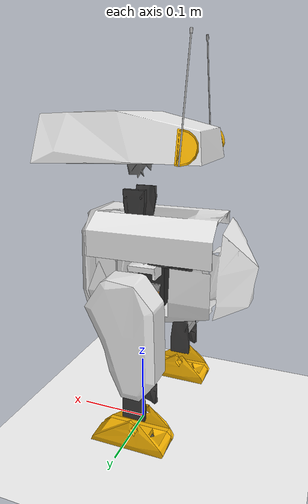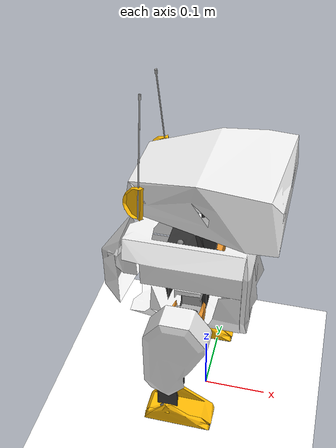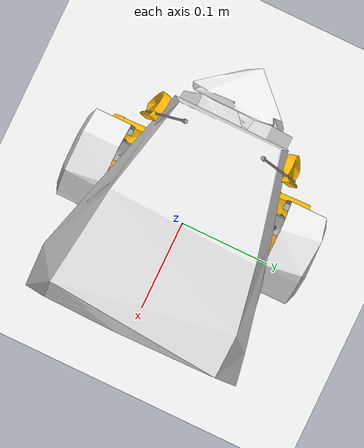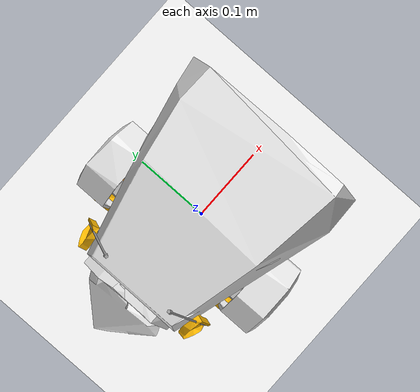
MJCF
<mujoco model="scene">
    <include file="waddle_12V_nobacklash.xml"/>

    <visual>
        <headlight diffuse="0.6 0.6 0.6" ambient="0.3 0.3 0.3" specular="0 0 0"/>
        <rgba haze="0.15 0.25 0.35 1"/>
        <global azimuth="160" elevation="-20"/>
    </visual>

    <asset>
        <texture type="skybox" builtin="gradient" rgb1="1 1 1" rgb2="1 1 1" width="800" height="800"/>
        <texture type="2d" name="groundplane" builtin="checker" mark="edge" rgb1="1 1 1" rgb2="1 1 1" markrgb="0 0 0"
            width="300" height="300"/>
        <material name="groundplane" texture="groundplane" texuniform="true" texrepeat="5 5" reflectance="0"/>
    </asset>

    <worldbody>
        <body name="floor">
            <geom name="floor" size="0 0 0.01" type="plane" material="groundplane" contype="1" conaffinity="0"
                priority="1" friction="0.6" condim="3"/>
        </body>
    </worldbody>
    <keyframe>
        <key name="home"
            qpos="
    0 0 0.15
    1 0 0 0
    0.0
    0.0
    -0.63
    1.37
    -0.79
    0.0
    0.0
    0.0
    0.0
    0.0
    0.0
    0.63
    1.37
    -0.79
"
            ctrl="
    0.0
    0.0
    -0.63
    1.37
    -0.79
    0.0
    0.0
    0.0
    0.0
    0.0
    0.0
    0.63
    1.37
    -0.79
          "/>
    </keyframe>
</mujoco>

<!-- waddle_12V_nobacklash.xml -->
<mujoco model="waddle">
  <!-- They had this option in openduck so added here -->
  <option iterations="1" ls_iterations="5">
    <flag eulerdamp="disable"/>
  </option>

  <compiler angle="radian" meshdir="../assets" autolimits="true"/>

  <default>
    <default class="waddle">
      <default class="visual">
        <geom type="mesh" contype="0" conaffinity="0" group="2"/>
      </default>
      <default class="collision">
        <geom group="3"/>
      </default>
    </default>
  </default>
  <!-- Additional xmls/sensors.xml -->
  <sensor>
    <gyro site="imu" name="gyro"/>
    <velocimeter site="imu" name="local_linvel"/>
    <accelerometer site="imu" name="accelerometer"/>
    <framezaxis objtype="site" objname="imu" name="upvector"/>
    <framexaxis objtype="site" objname="imu" name="forwardvector"/>
    <framelinvel objtype="site" objname="imu" name="global_linvel"/>
    <frameangvel objtype="site" objname="imu" name="global_angvel"/>
    <framepos objtype="site" objname="imu" name="position"/>
    <framequat objtype="site" objname="imu" name="orientation"/>
    <framelinvel objtype="site" objname="right_foot" name="right_foot_global_linvel"/>
    <framelinvel objtype="site" objname="left_foot" name="left_foot_global_linvel"/>
    <framexaxis objtype="site" objname="left_foot" name="left_foot_upvector"/>
    <framexaxis objtype="site" objname="right_foot" name="right_foot_upvector"/>
    <framepos objtype="site" objname="left_foot" name="left_foot_pos"/>
    <framepos objtype="site" objname="right_foot" name="right_foot_pos"/>
  </sensor>
  <!-- Additional xmls/joints_properties.xml -->
  <default>
    <default class="sts3215_12v">
      <geom contype="0" conaffinity="0"/>
      <joint damping="1.05" frictionloss="0.195" armature="0.032"/>
      <position kp="46.3" kv="0.0" forcerange="-8.53 8.53"/>
      <default class="chosen_actuator"/>
    </default>
  </default>
  <worldbody>
    <body name="base" pos="0 0 0.22">
      <freejoint name="floating_base"/>
      <!-- IMU position unchanged from waddle original -->
      <site name="imu" pos="-0.040705 -1.715e-09 0.0862909"/>

      <!-- Link trunk_assembly -->
      <body name="trunk_assembly" pos="0 0 0" quat="1 0 0 0" childclass="waddle">
        <!-- Mass/inertia unchanged from waddle original -->
        <inertial pos="-0.0215141 0.00119061 0.0354003" mass="1.1678" fullinertia="0.00252715 0.00565527 0.00482046 0.000146105 0.000181039 -2.75948e-05"/>
        <!-- Part jetson_nano_baseplate -->
        <!-- Internal visual part removed to match open duck convention -->
        <!-- Part body_front -->
        <geom type="mesh" class="visual" pos="0.001 0 0.0648909" quat="1 -0 -0 0" mesh="body_front" material="body_front_material"/>
        <!-- Part battery_enclosure -->
        <geom type="mesh" class="visual" pos="0.065 0.027 -0.0151091" quat="0.707107 -0 -0.707107 -0" mesh="battery_enclosure" material="battery_enclosure_material"/>
        <!-- Internal visual part removed to match open duck convention -->
        <!-- Part turnigy_3s_battery -->
        <!-- Internal visual part removed to match open duck convention -->
        <!-- Part body_middle_bottom -->
        <geom type="mesh" class="visual" pos="-0.019 -0 0.0648909" quat="1 -0 -0 0" mesh="body_middle_bottom" material="body_middle_bottom_material"/>
        <!-- Part simplified_jetson_nano -->
        <!-- Internal visual part removed to match open duck convention -->
        <!-- Part switch -->
        <!-- Internal visual part removed to match open duck convention -->
        <!-- Part body_middle_top -->
        <geom type="mesh" class="visual" pos="-0.019 0 0.0648909" quat="1 0 0 0" mesh="body_middle_top" material="body_middle_top_material"/>
        <!-- Part body_back -->
        <geom type="mesh" class="visual" pos="-0.019 0 0.0648909" quat="1 -0 -0 0" mesh="body_back" material="body_back_material"/>
        <!-- Part bno055 -->
        <!-- Internal visual part removed to match open duck convention -->
        <!-- Part roll_bearing -->
        <!-- Internal visual part removed to match open duck convention -->
        <!-- Part trunk_bottom -->
        <geom type="mesh" class="visual" pos="-0.019 0 0.0648909" quat="1 -0 0 0" mesh="trunk_bottom" material="trunk_bottom_material"/>
        <!-- Part trunk_top -->
        <geom type="mesh" class="visual" pos="-0.019 -0 0.0648909" quat="1 -0 -0 0" mesh="trunk_top" material="trunk_top_material"/>
        <!-- Part board -->
        <!-- Internal visual part removed to match open duck convention -->
        <!-- Part roll_bearing_2 -->
        <!-- Internal visual part removed to match open duck convention -->
        <!-- Part pdb_xt60 -->
        <!-- Internal visual part removed to match open duck convention -->
        <!-- Part wj_wk00_0123middlecase_56 -->
        <!-- Part drive_palonier -->
        <!-- Part wj_wk00_0124bottomcase_45 -->
        <!-- Part wj_wk00_0122topcabinetcase_95 -->
        <!-- Part passive_palonier -->
        <!-- Part wj_wk00_0123middlecase_56_2 -->
        <!-- Part drive_palonier_2 -->
        <!-- Part wj_wk00_0124bottomcase_45_2 -->
        <!-- Part wj_wk00_0122topcabinetcase_95_2 -->
        <!-- Part passive_palonier_2 -->
        <!-- Part wj_wk00_0123middlecase_56_3 -->
        <!-- Part drive_palonier_3 -->
        <!-- Part wj_wk00_0124bottomcase_45_3 -->
        <!-- Part wj_wk00_0122topcabinetcase_95_3 -->
        <!-- Part passive_palonier_3 -->
        <!-- Frame trunk -->
        <site group="3" name="trunk" pos="-0.024 -0 0.0881909" quat="1 -0 -0 0"/>
        <!-- Frame imu -->
        <!-- Link hip_roll_assembly -->
        <body name="hip_roll_assembly" pos="-0.019 0.035 0.0459409" quat="1 -0 -0 -0">
          <!-- Joint from trunk_assembly to hip_roll_assembly -->
          <!-- left_hip_yaw: range unchanged (same as open duck: ±30°) -->
          <joint axis="0 0 1" name="left_hip_yaw" type="hinge" range="-0.5235987755981718 0.5235987755984258" class="chosen_actuator"/>

          <inertial pos="0.000795081 -5.46541e-06 -0.03306" mass="0.06648" fullinertia="2.44411e-05 2.81818e-05 1.42687e-05 2.357e-09 -3.81059e-07 -7.5e-09"/>
          <!-- Part roll_motor_bottom -->
          <geom type="mesh" class="visual" pos="-0 -0.035 0.01905" quat="1 -0 0 -0" mesh="roll_motor_bottom" material="roll_motor_bottom_material"/>
          <!-- Part roll_motor_top -->
          <geom type="mesh" class="visual" pos="0 -0.035 0.01905" quat="1 0 0 0" mesh="roll_motor_top" material="roll_motor_top_material"/>
          <!-- Part wj_wk00_0123middlecase_56_4 -->
          <!-- Part drive_palonier_4 -->
          <!-- Part wj_wk00_0124bottomcase_45_4 -->
          <!-- Part wj_wk00_0122topcabinetcase_95_4 -->
          <!-- Part passive_palonier_4 -->

          <!-- Link left_roll_to_pitch_assembly -->
          <body name="left_roll_to_pitch_assembly" pos="0.01905 0 -0.046015" quat="0.5 -0.5 -0.5 0.5">
            <!-- Joint from hip_roll_assembly to left_roll_to_pitch_assembly -->
            <!-- left_hip_roll: range unchanged (same as open duck: ±25°) -->
            <joint axis="0 0 1" name="left_hip_roll" type="hinge" range="-0.43633231299857883 0.43633231299858594" class="chosen_actuator"/>

            <inertial pos="0.0507497 -0.000407512 0.0204377" mass="0.07516" fullinertia="2.52682e-05 4.15738e-05 2.82869e-05 1.22744e-07 -7.32857e-07 -1.05692e-07"/>
            <!-- Part left_roll_to_pitch -->
            <geom type="mesh" class="visual" pos="-0.035 -0.065 0.01905" quat="0.5 0.5 0.5 -0.5" mesh="left_roll_to_pitch" material="left_roll_to_pitch_material"/>
            <!-- Part wj_wk00_0123middlecase_56_5 -->
            <!-- Part drive_palonier_5 -->
            <!-- Part wj_wk00_0124bottomcase_45_5 -->
            <!-- Part wj_wk00_0122topcabinetcase_95_5 -->
            <!-- Part passive_palonier_5 -->

            <!-- Link knee_and_ankle_assembly -->
            <!-- CHANGED: quat from 0.270598 -0.653281 -0.270598 0.653281 to 0 -0.707107 0 0.707107 (match open duck pure 90° rotation) -->
            <body name="knee_and_ankle_assembly" pos="0.07415 -0 0.03511" quat="0 -0.707107 0 0.707107">
              <!-- Joint from left_roll_to_pitch_assembly to knee_and_ankle_assembly -->
              <!-- CHANGED: left_hip_pitch range from [-0.44, 1.31] to [-1.22, 0.52] to match open duck -->
              <joint axis="0 0 1" name="left_hip_pitch" type="hinge" range="-1.2217304763960306 0.5235987755982988" class="chosen_actuator"/>
              <inertial pos="0.00253369 -0.0390636 0.0102776" mass="0.12407" fullinertia="0.000211406 7.83759e-05 0.000225619 -2.68706e-05 3.81906e-06 2.08009e-05"/>
              <!-- Part left_cache -->
              <geom type="mesh" class="visual" pos="0.01606 0.065 0.10915" quat="0.707107 -0.707107 -0 0" mesh="left_cache" material="left_cache_material"/>
              <!-- Part leg_spacer -->
              <geom type="mesh" class="visual" pos="0.01606 0.14365 0.10925" quat="0.707107 -0.707107 -0 0" mesh="leg_spacer" material="leg_spacer_material"/>
              <!-- Part left_knee_to_ankle_right_sheet -->
              <geom type="mesh" class="visual" pos="0.01606 0.14365 0.10915" quat="0.707107 -0.707107 -0 0" mesh="left_knee_to_ankle_right_sheet" material="left_knee_to_ankle_right_sheet_material"/>
              <!-- Part left_knee_to_ankle_left_sheet -->
              <geom type="mesh" class="visual" pos="0.01606 0.14365 0.10915" quat="0.707107 -0.707107 0 -0" mesh="left_knee_to_ankle_left_sheet" material="left_knee_to_ankle_left_sheet_material"/>
              <!-- Part wj_wk00_0123middlecase_56_6 -->
              <!-- Part drive_palonier_6 -->
              <!-- Part wj_wk00_0124bottomcase_45_6 -->
              <!-- Part wj_wk00_0122topcabinetcase_95_6 -->
              <!-- Part passive_palonier_6 -->

              <!-- Link knee_and_ankle_assembly_2 -->
              <!-- CHANGED: quat from 0.707107 0 0 0.707107 to 1 0 0 0 (match open duck identity) -->
              <body name="knee_and_ankle_assembly_2" pos="-0 -0.07865 0.0001" quat="1 0 0 0">
                <!-- Joint from knee_and_ankle_assembly to knee_and_ankle_assembly_2 -->
                <!-- CHANGED: left_knee range from [-3.14, 0.0] to [-1.57, 1.57] to match open duck -->
                <joint axis="0 0 1" name="left_knee" type="hinge" range="-1.5707963267948966 1.5707963267948966" class="chosen_actuator"/>

                <inertial pos="5.01859e-06 -0.0577465 0.0181136" mass="0.07259" fullinertia="4.99575e-05 1.87273e-05 4.23932e-05 1.0382e-08 2.252e-09 8.8105e-08"/>
                <!-- Part leg_spacer_2 -->
                <geom type="mesh" class="visual" pos="0.01606 0.14365 0.10925" quat="0.707107 -0.707107 -0 0" mesh="leg_spacer" material="leg_spacer_material"/>
                <!-- Part left_knee_to_ankle_right_sheet_2 -->
                <geom type="mesh" class="visual" pos="0.01606 0.14365 0.10915" quat="0.707107 -0.707107 -0 0" mesh="left_knee_to_ankle_right_sheet" material="left_knee_to_ankle_right_sheet_material"/>
                <!-- Part left_knee_to_ankle_left_sheet_2 -->
                <geom type="mesh" class="visual" pos="0.01606 0.14365 0.10915" quat="0.707107 -0.707107 -0 0" mesh="left_knee_to_ankle_left_sheet" material="left_knee_to_ankle_left_sheet_material"/>
                <!-- Part wj_wk00_0123middlecase_56_7 -->
                <!-- Part drive_palonier_7 -->
                <!-- Part wj_wk00_0124bottomcase_45_7 -->
                <!-- Part wj_wk00_0122topcabinetcase_95_7 -->
                <!-- Part passive_palonier_7 -->

                <!-- Link foot_assembly -->
                <!-- CHANGED: quat from 0.92388 0 0 -0.382683 to 1 0 0 0 (match open duck identity) -->
                <body name="foot_assembly" pos="-0 -0.07865 0.0001" quat="1 0 0 0">
                  <!-- Joint from knee_and_ankle_assembly_2 to foot_assembly -->
                  <!-- CHANGED: left_ankle range from [-0.79, 2.36] to [-1.57, 1.57] to match open duck -->
                  <joint axis="0 0 1" name="left_ankle" type="hinge" range="-1.5707963267948966 1.5707963267948966" class="chosen_actuator"/>
                  <inertial pos="0.0110718 -0.0246608 0.0190626" mass="0.07524" fullinertia="1.87482e-05 6.74427e-05 6.061e-05 1.58839e-06 -6.524e-09 5.6739e-08"/>
                  <!-- Part foot_side -->
                  <geom type="mesh" class="visual" pos="0.01606 0.2223 0.10905" quat="0.707107 -0.707107 0 -0" mesh="foot_side" material="foot_side_material"/>
                  <!-- Part foot_bottom_tpu -->
                  <geom type="mesh" class="visual" pos="0.01656 0.2228 0.10955" quat="0.707107 -0.707107 0 -0" mesh="foot_bottom_tpu" material="foot_bottom_tpu_material"/>
                  <geom name="left_foot_bottom_tpu" type="mesh" class="collision" pos="0.01656 0.2228 0.10955" quat="0.707107 -0.707107 0 -0" mesh="foot_bottom_tpu" material="foot_bottom_tpu_material"/>
                  <!-- Part foot_bottom_pla -->
                  <geom type="mesh" class="visual" pos="0.01656 0.2228 0.10955" quat="0.707107 -0.707107 0 -0" mesh="foot_bottom_pla" material="foot_bottom_pla_material"/>
                  <!-- Part foot_top -->
                  <geom type="mesh" class="visual" pos="0.01606 0.2223 0.10905" quat="0.707107 -0.707107 0 -0" mesh="foot_top" material="foot_top_material"/>
                  <!-- Frame left_foot -->
                  <site group="3" name="left_foot" pos="0.0005 -0.036225 0.01955" quat="0.707107 -0.707107 -0 0"/>
                </body>
              </body>
            </body>
          </body>
        </body>

        <!-- Link neck_pitch_assembly -->
        <!-- CHANGED: quat from 0.653281 0.653281 -0.270598 0.270598 to 0.707107 0.707107 0 0 (match open duck pure rotation) -->
        <body name="neck_pitch_assembly" pos="0.001 0.01915 0.0900009" quat="0.707107 0.707107 0 0">
          <!-- Joint from trunk_assembly to neck_pitch_assembly -->
          <!-- CHANGED: neck_pitch range from [-1.13, 0.35] to [-0.35, 1.13] to match open duck -->
          <joint axis="0 0 1" name="neck_pitch" type="hinge" range="-0.3490658503988437 1.1344640137963364" class="chosen_actuator"/>

          <inertial pos="-5.63137e-06 0.0492968 0.0181786" mass="0.06618" fullinertia="3.49456e-05 1.70231e-05 2.80043e-05 8.756e-09 -2.156e-09 -1.8519e-08"/>
          <!-- Part neck_left_sheet -->
          <geom type="mesh" class="visual" pos="-0.02 -0.02511 0.01905" quat="0.707107 -0.707107 0 0" mesh="neck_left_sheet" material="neck_left_sheet_material"/>
          <!-- Part neck_right_sheet -->
          <geom type="mesh" class="visual" pos="-0.02 -0.02511 0.01905" quat="0.707107 -0.707107 0 -0" mesh="neck_right_sheet" material="neck_right_sheet_material"/>
          <!-- Part wj_wk00_0123middlecase_56_8 -->
          <!-- Part drive_palonier_8 -->
          <!-- Part wj_wk00_0124bottomcase_45_8 -->
          <!-- Part wj_wk00_0122topcabinetcase_95_8 -->
          <!-- Part passive_palonier_8 -->

          <!-- Link head_pitch_to_yaw -->
          <!-- CHANGED: quat from 0.92388 0 0 -0.382683 to 1 0 0 0 (match open duck identity) -->
          <body name="head_pitch_to_yaw" pos="0 0.066 -0" quat="1 0 0 0">
            <!-- Joint from neck_pitch_assembly to head_pitch_to_yaw -->
            <!-- CHANGED: head_pitch range from [0.0, 1.57] to [-0.79, 0.79] to match open duck -->
            <joint axis="0 0 1" name="head_pitch" type="hinge" range="-0.7853981633974483 0.7853981633974483" class="chosen_actuator"/>

            <inertial pos="-0.00766247 0.026015 0.0186681" mass="0.0169378" fullinertia="9.43036e-06 4.64763e-06 8.02915e-06 1.35195e-06 3.059e-08 -8.428e-08"/>
            <!-- Part head_pitch_to_yaw -->
            <geom type="mesh" class="visual" pos="-0.02 -0.09111 0.01905" quat="0.707107 -0.707107 0 0" mesh="head_pitch_to_yaw" material="head_pitch_to_yaw_material"/>
            <!-- Link neck_yaw_assembly -->
            <body name="neck_yaw_assembly" pos="-0 0.057 0.01905" quat="0.707107 -0.707107 -0 0">
              <!-- Joint from head_pitch_to_yaw to neck_yaw_assembly -->
              <!-- head_yaw: range unchanged (same as open duck: ±160°) -->
              <joint axis="0 0 1" name="head_yaw" type="hinge" range="-2.7925268031909254 2.792526803190929" class="chosen_actuator"/>
              <inertial pos="0.00412907 3.95745e-06 -0.0222828" mass="0.0918099" fullinertia="3.11706e-05 6.94935e-05 7.04025e-05 4.294e-09 -4.41251e-06 -3.82e-09"/>
              <!-- Part head_yaw_to_roll -->
              <geom type="mesh" class="visual" pos="-0.02 -0 -0.14821" quat="1 0 -0 0" mesh="head_yaw_to_roll" material="head_yaw_to_roll_material"/>
              <!-- Part wj_wk00_0123middlecase_56_9 -->
              <!-- Part drive_palonier_9 -->
              <!-- Part wj_wk00_0124bottomcase_45_9 -->
              <!-- Part wj_wk00_0122topcabinetcase_95_9 -->
              <!-- Part passive_palonier_9 -->
              <!-- Link head_assembly -->
              <body name="head_assembly" pos="0.04095 0 -0.01915" quat="0.707107 0 -0.707107 0">
                <!-- Joint from neck_yaw_assembly to head_assembly -->
                <!-- head_roll: range unchanged (same as open duck: ±30°) -->
                <joint axis="0 0 1" name="head_roll" type="hinge" range="-0.5235987755982988 0.5235987755982988" class="chosen_actuator"/>
                <inertial pos="0.00970265 -0.00377267 0.0145742" mass="0.456841" fullinertia="0.00288287 0.00188338 0.00130444 3.89528e-07 8.34554e-05 -1.45622e-06"/>
                <!-- Part right_antenna_holder -->
                <geom type="mesh" class="visual" pos="-0.12906 -0 0.06095" quat="0.707107 -0 0.707107 0" mesh="right_antenna_holder" material="right_antenna_holder_material"/>
                <!-- Part antenna -->
                <geom type="mesh" class="visual" pos="-0.0830595 0.182212 0.06095" quat="0.685585 0.173128 0.685585 -0.173128" mesh="antenna" material="antenna_material"/>
                <!-- Part antenna_2 -->
                <geom type="mesh" class="visual" pos="-0.12808 0.000247519 0.06095" quat="0.707107 -0 0.707107 0" mesh="antenna" material="antenna_material"/>
                <!-- Part left_antenna_holder -->
                <geom type="mesh" class="visual" pos="-0.12906 -0 0.06095" quat="0.707107 -0 0.707107 0" mesh="left_antenna_holder" material="left_antenna_holder_material"/>
                <!-- Part usb_camera_ov2710 -->
                <!-- Internal visual part removed to match open duck convention -->
                <!-- Part head_bot_sheet -->
                <geom type="mesh" class="visual" pos="-0.12906 -0 0.06095" quat="0.707107 -0 0.707107 -0" mesh="head_bot_sheet" material="head_bot_sheet_material"/>
                <!-- Part head_2 -->
                <geom type="mesh" class="visual" pos="-0.12906 -0 0.06095" quat="0.707107 -0 0.707107 -0" mesh="head" material="head_material"/>
                <!-- Part flash_reflector_interface -->
                <!-- Internal visual part removed to match open duck convention -->
                <!-- Part bulb -->
                <!-- Part glass -->
                <!-- Part head_roll_mount -->
                <!-- Part left_eye -->
                <!-- Part flash_light_module -->
                <!-- Part full_speaker -->
                <!-- Part roll_bearing_3 -->
                <!-- Part sg90 -->
                <!-- Part glass_2 -->
                <!-- Part sg90_2 -->
                <!-- Part bulb_2 -->
                <!-- Part speaker_interface -->
                <!-- Part speaker_stand -->
                <!-- Part right_eye -->
                <!-- Part usb_camera_ov2710_2 -->
                <!-- Part glass_3 -->
                <!-- Part glass_4 -->
                <!-- Part wj_wk00_0123middlecase_56_10 -->
                <!-- Part drive_palonier_10 -->
                <!-- Part wj_wk00_0124bottomcase_45_10 -->
                <!-- Part wj_wk00_0122topcabinetcase_95_10 -->
                <!-- Part passive_palonier_10 -->
                <!-- Frame head -->
                <site group="3" name="head" pos="0.04245 -0 0.03595" quat="0.707107 -0 0.707107 -0"/>
              </body>
            </body>
          </body>
        </body>
        <!-- Link hip_roll_assembly_2 -->
        <body name="hip_roll_assembly_2" pos="-0.019 -0.035 0.0459409" quat="1 -0 -0 0">
          <!-- Joint from trunk_assembly to hip_roll_assembly_2 -->
          <!-- right_hip_yaw: range unchanged (same as open duck: ±30°) -->
          <joint axis="0 0 1" name="right_hip_yaw" type="hinge" range="-0.5235987755982962 0.5235987755983015" class="chosen_actuator"/>

          <inertial pos="0.000795081 -5.46541e-06 -0.03306" mass="0.06648" fullinertia="2.44411e-05 2.81818e-05 1.42687e-05 2.357e-09 -3.81059e-07 -7.5e-09"/>
          <!-- Part roll_motor_bottom_2 -->
          <geom type="mesh" class="visual" pos="-0 -0.035 0.01905" quat="1 0 -0 -0" mesh="roll_motor_bottom" material="roll_motor_bottom_material"/>
          <!-- Part roll_motor_top_2 -->
          <geom type="mesh" class="visual" pos="-0 -0.035 0.01905" quat="1 0 0 0" mesh="roll_motor_top" material="roll_motor_top_material"/>
          <!-- Part wj_wk00_0123middlecase_56_11 -->
          <!-- Part drive_palonier_11 -->
          <!-- Part wj_wk00_0124bottomcase_45_11 -->
          <!-- Part wj_wk00_0122topcabinetcase_95_11 -->
          <!-- Part passive_palonier_11 -->
          <!-- Link right_roll_to_pitch_assembly -->
          <body name="right_roll_to_pitch_assembly" pos="0.01905 0 -0.046015" quat="0.5 -0.5 -0.5 0.5">
            <!-- Joint from hip_roll_assembly_2 to right_roll_to_pitch_assembly -->
            <!-- right_hip_roll: range unchanged (same as open duck: ±25°) -->
            <joint axis="0 0 1" name="right_hip_roll" type="hinge" range="-0.4363323129985753 0.4363323129985895" class="chosen_actuator"/>

            <inertial pos="-0.0507497 -0.000417205 0.0204377" mass="0.07516" fullinertia="2.52676e-05 4.15738e-05 2.82863e-05 -1.31172e-07 7.32857e-07 -8.9468e-08"/>
            <!-- Part right_roll_to_pitch -->
            <geom type="mesh" class="visual" pos="0.035 -0.065 0.01905" quat="0.5 0.5 0.5 -0.5" mesh="right_roll_to_pitch" material="right_roll_to_pitch_material"/>
            <!-- Part wj_wk00_0123middlecase_56_12 -->
            <!-- Part drive_palonier_12 -->
            <!-- Part wj_wk00_0124bottomcase_45_12 -->
            <!-- Part wj_wk00_0122topcabinetcase_95_12 -->
            <!-- Part passive_palonier_12 -->
            <!-- Link knee_and_ankle_assembly_3 -->
            <!-- CHANGED: quat from 0.653281 0.270598 0.653281 0.270598 to 0.707107 0 0.707107 0 (match open duck pure 90° rotation) -->
            <body name="knee_and_ankle_assembly_3" pos="-0.07415 -0 0.03511" quat="0.707107 0 0.707107 0">
              <!-- Joint from right_roll_to_pitch_assembly to knee_and_ankle_assembly_3 -->
              <!-- CHANGED: right_hip_pitch range from [-1.31, 0.44] to [-0.52, 1.22] to match open duck -->
              <joint axis="0 0 1" name="right_hip_pitch" type="hinge" range="-0.5235987755982988 1.2217304763960306" class="chosen_actuator"/>

              <inertial pos="0.00253369 0.0390636 0.010809" mass="0.12407" fullinertia="0.000212363 7.93324e-05 0.000225619 2.68706e-05 3.9656e-06 -2.17407e-05"/>
              <!-- Part right_cache -->
              <geom type="mesh" class="visual" pos="0.01606 -0.065 0.1092" quat="0.707107 0.707107 -0 0" mesh="right_cache" material="right_cache_material"/>
              <!-- Part leg_spacer_3 -->
              <geom type="mesh" class="visual" pos="0.01606 -0.14365 -0.07215" quat="0.707107 0.707107 -0 0" mesh="leg_spacer" material="leg_spacer_material"/>
              <!-- Part left_knee_to_ankle_right_sheet_3 -->
              <geom type="mesh" class="visual" pos="0.01606 -0.14365 -0.07205" quat="0.707107 0.707107 0 0" mesh="left_knee_to_ankle_right_sheet" material="left_knee_to_ankle_right_sheet_material"/>
              <!-- Part left_knee_to_ankle_left_sheet_3 -->
              <geom type="mesh" class="visual" pos="0.01606 -0.14365 -0.07205" quat="0.707107 0.707107 0 0" mesh="left_knee_to_ankle_left_sheet" material="left_knee_to_ankle_left_sheet_material"/>
              <!-- Part wj_wk00_0123middlecase_56_13 -->
              <!-- Part drive_palonier_13 -->
              <!-- Part wj_wk00_0124bottomcase_45_13 -->
              <!-- Part wj_wk00_0122topcabinetcase_95_13 -->
              <!-- Part passive_palonier_13 -->
              <!-- Link knee_and_ankle_assembly_4 -->
              <!-- CHANGED: quat from 0 -0.707107 0.707107 0 to 0 1 0 0 (match open duck) -->
              <body name="knee_and_ankle_assembly_4" pos="-0 0.07865 0.037" quat="0 1 0 0">
                <!-- Joint from knee_and_ankle_assembly_3 to knee_and_ankle_assembly_4 -->
                <!-- CHANGED: right_knee range from [-3.14, 0.0] to [-1.57, 1.57] to match open duck -->
                <joint axis="0 0 1" name="right_knee" type="hinge" range="-1.5707963267948966 1.5707963267948966" class="chosen_actuator"/>

                <inertial pos="5.01859e-06 -0.0577465 0.0181136" mass="0.07259" fullinertia="4.99575e-05 1.87273e-05 4.23932e-05 1.0382e-08 2.252e-09 8.8105e-08"/>
                <!-- Part leg_spacer_4 -->
                <geom type="mesh" class="visual" pos="0.01606 0.14365 0.10925" quat="0.707107 -0.707107 0 -0" mesh="leg_spacer" material="leg_spacer_material"/>
                <!-- Part left_knee_to_ankle_right_sheet_4 -->
                <geom type="mesh" class="visual" pos="0.01606 0.14365 0.10915" quat="0.707107 -0.707107 0 -0" mesh="left_knee_to_ankle_right_sheet" material="left_knee_to_ankle_right_sheet_material"/>
                <!-- Part left_knee_to_ankle_left_sheet_4 -->
                <geom type="mesh" class="visual" pos="0.01606 0.14365 0.10915" quat="0.707107 -0.707107 0 0" mesh="left_knee_to_ankle_left_sheet" material="left_knee_to_ankle_left_sheet_material"/>
                <!-- Part wj_wk00_0123middlecase_56_14 -->
                <!-- Part drive_palonier_14 -->
                <!-- Part wj_wk00_0124bottomcase_45_14 -->
                <!-- Part wj_wk00_0122topcabinetcase_95_14 -->
                <!-- Part passive_palonier_14 -->
                <!-- Link foot_assembly_2 -->
                <!-- CHANGED: quat from 0.92388 0 0 -0.382683 to 1 0 0 0 (match open duck identity) -->
                <body name="foot_assembly_2" pos="-0 -0.07865 0.0001" quat="1 0 0 0">
                  <!-- Joint from knee_and_ankle_assembly_4 to foot_assembly_2 -->
                  <!-- CHANGED: right_ankle range from [-0.79, 2.36] to [-1.57, 1.57] to match open duck -->
                  <joint axis="0 0 1" name="right_ankle" type="hinge" range="-1.5707963267948966 1.5707963267948966" class="chosen_actuator"/>

                  <inertial pos="0.0110718 -0.0246608 0.0190626" mass="0.07524" fullinertia="1.87482e-05 6.74427e-05 6.061e-05 1.58839e-06 -6.524e-09 5.6739e-08"/>
                  <!-- Part foot_side_2 -->
                  <geom type="mesh" class="visual" pos="0.01606 0.2223 0.10905" quat="0.707107 -0.707107 0 0" mesh="foot_side" material="foot_side_material"/>
                  <!-- Part foot_bottom_tpu_2 -->
                  <geom type="mesh" class="visual" pos="0.01656 0.2228 0.10955" quat="0.707107 -0.707107 0 0" mesh="foot_bottom_tpu" material="foot_bottom_tpu_material"/>
                  <geom name="right_foot_bottom_tpu" type="mesh" class="collision" pos="0.01656 0.2228 0.10955" quat="0.707107 -0.707107 0 0" mesh="foot_bottom_tpu" material="foot_bottom_tpu_material"/>
                  <!-- Part foot_bottom_pla_2 -->
                  <geom type="mesh" class="visual" pos="0.01656 0.2228 0.10955" quat="0.707107 -0.707107 0 0" mesh="foot_bottom_pla" material="foot_bottom_pla_material"/>
                  <!-- Part foot_top_2 -->
                  <geom type="mesh" class="visual" pos="0.01606 0.2223 0.10905" quat="0.707107 -0.707107 0 0" mesh="foot_top" material="foot_top_material"/>
                  <!-- Frame right_foot -->
                  <site group="3" name="right_foot" pos="0.0005 -0.036225 0.01955" quat="0.707107 -0.707107 0 0"/>
                </body>
              </body>
            </body>
          </body>
        </body>
      </body>
    </body>
  </worldbody>
  <asset>
    <mesh file="left_cache.stl"/>
    <mesh file="simplified_jetson_nano.stl"/>
    <mesh file="head_pitch_to_yaw.stl"/>
    <mesh file="glass.stl"/>
    <mesh file="wj_wk00_0122topcabinetcase_95.stl"/>
    <mesh file="left_knee_to_ankle_left_sheet.stl"/>
    <mesh file="battery_enclosure.stl"/>
    <mesh file="left_eye.stl"/>
    <mesh file="turnigy_3s_battery.stl"/>
    <mesh file="antenna.stl"/>
    <mesh file="body_front.stl"/>
    <mesh file="roll_motor_top.stl"/>
    <mesh file="right_cache.stl"/>
    <mesh file="left_knee_to_ankle_right_sheet.stl"/>
    <mesh file="jetson_nano_baseplate.stl"/>
    <mesh file="wj_wk00_0123middlecase_56.stl"/>
    <mesh file="neck_left_sheet.stl"/>
    <mesh file="head.stl"/>
    <mesh file="foot_bottom_tpu.stl"/>
    <mesh file="flash_light_module.stl"/>
    <mesh file="passive_palonier.stl"/>
    <mesh file="drive_palonier.stl"/>
    <mesh file="head_yaw_to_roll.stl"/>
    <mesh file="flash_reflector_interface.stl"/>
    <mesh file="full_speaker.stl"/>
    <mesh file="switch.stl"/>
    <mesh file="body_back.stl"/>
    <mesh file="roll_motor_bottom.stl"/>
    <mesh file="left_antenna_holder.stl"/>
    <mesh file="right_eye.stl"/>
    <mesh file="neck_right_sheet.stl"/>
    <mesh file="bno055.stl"/>
    <mesh file="left_roll_to_pitch.stl"/>
    <mesh file="head_roll_mount.stl"/>
    <mesh file="trunk_bottom.stl"/>
    <mesh file="trunk_top.stl"/>
    <mesh file="foot_side.stl"/>
    <mesh file="right_antenna_holder.stl"/>
    <mesh file="foot_bottom_pla.stl"/>
    <mesh file="bulb.stl"/>
    <mesh file="leg_spacer.stl"/>
    <mesh file="foot_top.stl"/>
    <mesh file="sg90.stl"/>
    <mesh file="pdb_xt60.stl"/>
    <mesh file="board.stl"/>
    <mesh file="speaker_stand.stl"/>
    <mesh file="usb_camera_ov2710.stl"/>
    <mesh file="body_middle_top.stl"/>
    <mesh file="wj_wk00_0124bottomcase_45.stl"/>
    <mesh file="head_bot_sheet.stl"/>
    <mesh file="right_roll_to_pitch.stl"/>
    <mesh file="speaker_interface.stl"/>
    <mesh file="body_middle_bottom.stl"/>
    <mesh file="roll_bearing.stl"/>
    <material name="jetson_nano_baseplate_material" rgba="0.796078 0.823529 0.937255 1"/>
    <material name="body_front_material" rgba="0.917647 0.917647 0.917647 1"/>
    <material name="battery_enclosure_material" rgba="0.901961 0.901961 0.901961 1"/>
    <material name="turnigy_3s_battery_material" rgba="0.901961 0.901961 0.901961 1"/>
    <material name="body_middle_bottom_material" rgba="0.917647 0.917647 0.917647 1"/>
    <material name="simplified_jetson_nano_material" rgba="0.901961 0.901961 0.901961 1"/>
    <material name="switch_material" rgba="0.972549 0.529412 0.00392157 1"/>
    <material name="body_middle_top_material" rgba="0.917647 0.917647 0.917647 1"/>
    <material name="body_back_material" rgba="0.917647 0.917647 0.917647 1"/>
    <material name="bno055_material" rgba="0.615686 0.811765 0.929412 1"/>
    <material name="roll_bearing_material" rgba="0.6 0.6 0.6 1"/>
    <material name="trunk_bottom_material" rgba="0.180392 0.180392 0.180392 1"/>
    <material name="trunk_top_material" rgba="0.180392 0.180392 0.180392 1"/>
    <material name="board_material" rgba="0 0.501961 0 1"/>
    <material name="pdb_xt60_material" rgba="0.615686 0.811765 0.929412 1"/>
    <material name="wj_wk00_0123middlecase_56_material" rgba="0.247059 0.243137 0.243137 1"/>
    <material name="drive_palonier_material" rgba="0.623529 0.666667 0.701961 1"/>
    <material name="wj_wk00_0124bottomcase_45_material" rgba="0.247059 0.243137 0.243137 1"/>
    <material name="wj_wk00_0122topcabinetcase_95_material" rgba="0.247059 0.243137 0.243137 1"/>
    <material name="passive_palonier_material" rgba="0.623529 0.666667 0.701961 1"/>
    <material name="roll_motor_bottom_material" rgba="0.647059 0.647059 0.647059 1"/>
    <material name="roll_motor_top_material" rgba="0.901961 0.901961 0.901961 1"/>
    <material name="left_roll_to_pitch_material" rgba="0.909804 0.572549 0.164706 1"/>
    <material name="left_cache_material" rgba="0.917647 0.917647 0.917647 1"/>
    <material name="leg_spacer_material" rgba="0.647059 0.647059 0.647059 1"/>
    <material name="left_knee_to_ankle_right_sheet_material" rgba="0.223529 0.219608 0.219608 1"/>
    <material name="left_knee_to_ankle_left_sheet_material" rgba="0.223529 0.219608 0.219608 1"/>
    <material name="foot_side_material" rgba="0.980392 0.713725 0.00392157 1"/>
    <material name="foot_bottom_tpu_material" rgba="0.305882 0.298039 0.278431 1"/>
    <material name="foot_bottom_pla_material" rgba="0.305882 0.298039 0.278431 1"/>
    <material name="foot_top_material" rgba="0.980392 0.713725 0.00392157 1"/>
    <material name="neck_left_sheet_material" rgba="0.223529 0.219608 0.219608 1"/>
    <material name="neck_right_sheet_material" rgba="0.223529 0.219608 0.219608 1"/>
    <material name="head_pitch_to_yaw_material" rgba="0.4 0.4 0.4 1"/>
    <material name="head_yaw_to_roll_material" rgba="0.647059 0.647059 0.647059 1"/>
    <material name="right_antenna_holder_material" rgba="0.980392 0.713725 0.00392157 1"/>
    <material name="antenna_material" rgba="0.647059 0.647059 0.647059 1"/>
    <material name="left_antenna_holder_material" rgba="0.980392 0.713725 0.00392157 1"/>
    <material name="usb_camera_ov2710_material" rgba="0.615686 0.811765 0.929412 1"/>
    <material name="head_bot_sheet_material" rgba="0.647059 0.647059 0.647059 1"/>
    <material name="head_material" rgba="0.917647 0.917647 0.917647 1"/>
    <material name="flash_reflector_interface_material" rgba="0.647059 0.647059 0.647059 1"/>
    <material name="bulb_material" rgba="0.972549 0.529412 0.00392157 1"/>
    <material name="glass_material" rgba="0.760784 0.839216 0.92549 0.909804"/>
    <material name="head_roll_mount_material" rgba="0.501961 0.501961 0.501961 1"/>
    <material name="left_eye_material" rgba="0.498039 0.498039 0.498039 1"/>
    <material name="flash_light_module_material" rgba="0.34902 0.376471 0.4 1"/>
    <material name="full_speaker_material" rgba="0.647059 0.647059 0.647059 1"/>
    <material name="sg90_material" rgba="0.435294 0.670588 0.976471 0.827451"/>
    <material name="speaker_interface_material" rgba="0.615686 0.811765 0.929412 1"/>
    <material name="speaker_stand_material" rgba="0.980392 0.713725 0.00392157 1"/>
    <material name="right_eye_material" rgba="0.34902 0.376471 0.4 1"/>
    <material name="right_roll_to_pitch_material" rgba="0.909804 0.572549 0.164706 1"/>
    <material name="right_cache_material" rgba="0.917647 0.917647 0.917647 1"/>
  </asset>
  <actuator>
    <position class="chosen_actuator" name="left_hip_yaw" joint="left_hip_yaw" inheritrange="1"/>
    <position class="chosen_actuator" name="left_hip_roll" joint="left_hip_roll" inheritrange="1"/>
    <position class="chosen_actuator" name="left_hip_pitch" joint="left_hip_pitch" inheritrange="1"/>
    <position class="chosen_actuator" name="left_knee" joint="left_knee" inheritrange="1"/>
    <position class="chosen_actuator" name="left_ankle" joint="left_ankle" inheritrange="1"/>
    <position class="chosen_actuator" name="neck_pitch" joint="neck_pitch" inheritrange="1"/>
    <position class="chosen_actuator" name="head_pitch" joint="head_pitch" inheritrange="1"/>
    <position class="chosen_actuator" name="head_yaw" joint="head_yaw" inheritrange="1"/>
    <position class="chosen_actuator" name="head_roll" joint="head_roll" inheritrange="1"/>
    <position class="chosen_actuator" name="right_hip_yaw" joint="right_hip_yaw" inheritrange="1"/>
    <position class="chosen_actuator" name="right_hip_roll" joint="right_hip_roll" inheritrange="1"/>
    <position class="chosen_actuator" name="right_hip_pitch" joint="right_hip_pitch" inheritrange="1"/>
    <position class="chosen_actuator" name="right_knee" joint="right_knee" inheritrange="1"/>
    <position class="chosen_actuator" name="right_ankle" joint="right_ankle" inheritrange="1"/>
  </actuator>
  <equality/>
</mujoco>
